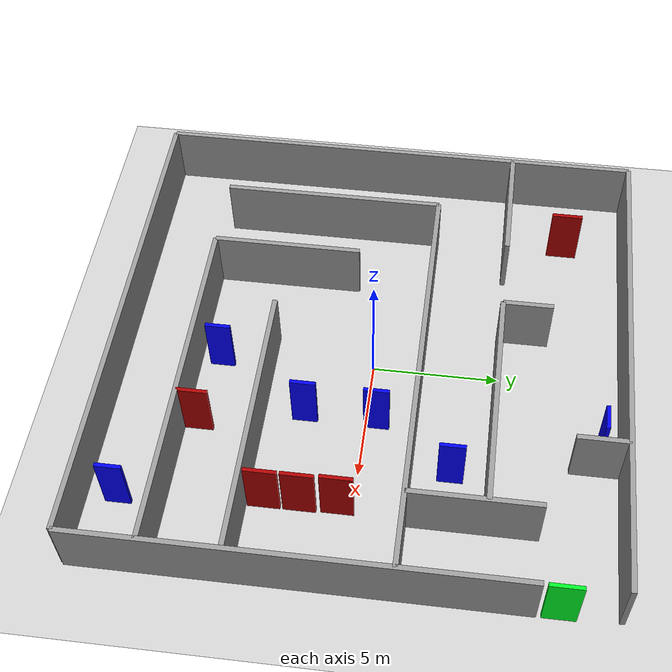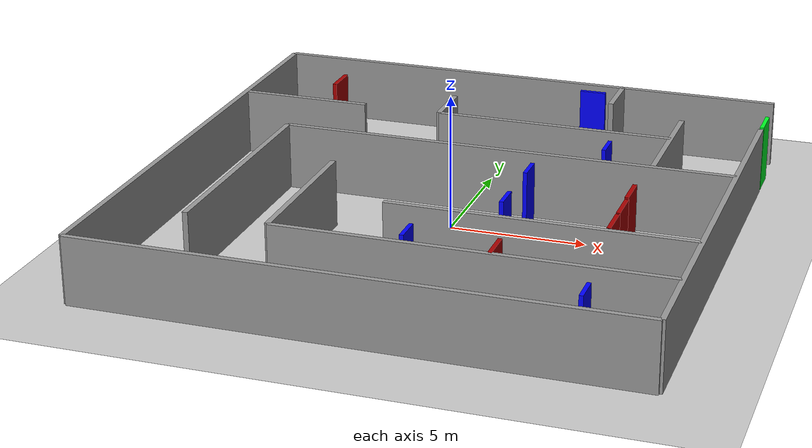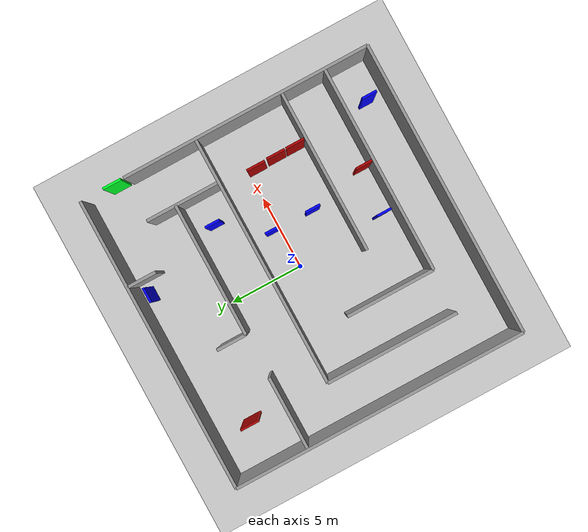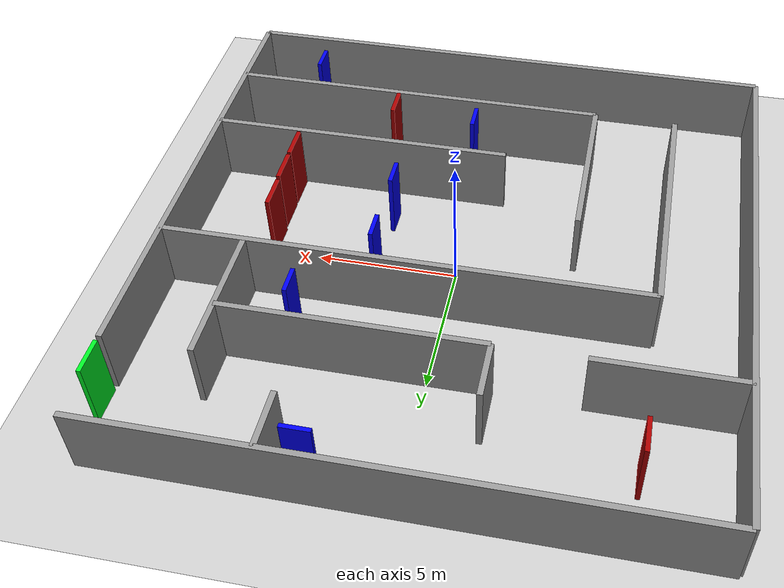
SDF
<sdf version="1.6">
 <world name="default">
  <light name="sun" type="directional">
   <pose>0 0 10 0 -0 0</pose>
   <diffuse>0.8 0.8 0.8 1</diffuse>
   <specular>0.1 0.1 0.1 1</specular>
   <attenuation>
    <range>1000</range>
    <constant>0.9</constant>
    <linear>0.01</linear>
    <quadratic>0.001</quadratic>
   </attenuation>
   <direction>-0.5 0.5 -1</direction>
  </light>
  <model name="ground_plane">
   <static>1</static>
   <link name="link">
    <collision name="collision">
     <geometry><plane><normal>0 0 1</normal><size>100 100</size></plane></geometry>
     <surface><friction><ode><mu>100</mu><mu2>50</mu2></ode></friction></surface>
    </collision>
    <visual name="visual">
     <cast_shadows>0</cast_shadows>
     <geometry><plane><normal>0 0 1</normal><size>100 100</size></plane></geometry>
     <material>
      <script><uri>file://media/materials/scripts/gazebo.material</uri><name>Gazebo/Grey</name></script>
     </material>
    </visual>
   </link>
  </model>
  <gravity>0 0 -9.8</gravity>
  <magnetic_field>6e-06 2.3e-05 -4.2e-05</magnetic_field>
  <atmosphere type="adiabatic"/>
  <physics name="default_physics" default="0" type="ode">
   <max_step_size>0.001</max_step_size>
   <real_time_factor>1</real_time_factor>
   <real_time_update_rate>1000</real_time_update_rate>
  </physics>
  <scene><ambient>0.4 0.4 0.4 1</ambient><background>0.7 0.7 0.7 1</background><shadows>1</shadows></scene>
  <spherical_coordinates>
   <surface_model>EARTH_WGS84</surface_model>
   <latitude_deg>0</latitude_deg>
   <longitude_deg>0</longitude_deg>
   <elevation>0</elevation>
   <heading_deg>0</heading_deg>
  </spherical_coordinates>
  <model name="challenge_maze">
   <static>1</static>
   <link name="Wall_0">
    <pose>-10 -10 0 0 -0 1.5708</pose>
    <collision name="Wall_0_Collision">
     <pose>10 0 1.25 0 -0 0</pose>
     <geometry><box><size>20 0.2 2.5</size></box></geometry>
    </collision>
    <visual name="Wall_0_Visual">
     <pose>10 0 1.25 0 -0 0</pose>
     <geometry><box><size>20 0.2 2.5</size></box></geometry>
     <material>
      <script><uri>file://media/materials/scripts/gazebo.material</uri><name>Gazebo/Grey</name></script>
     </material>
    </visual>
   </link>
   <link name="Wall_1">
    <pose>-10 -10 0 0 -0 0</pose>
    <collision name="Wall_1_Collision">
     <pose>10 0 1.25 0 -0 0</pose>
     <geometry><box><size>20 0.2 2.5</size></box></geometry>
    </collision>
    <visual name="Wall_1_Visual">
     <pose>10 0 1.25 0 -0 0</pose>
     <geometry><box><size>20 0.2 2.5</size></box></geometry>
     <material>
      <script><uri>file://media/materials/scripts/gazebo.material</uri><name>Gazebo/Grey</name></script>
     </material>
    </visual>
   </link>
   <link name="Wall_2">
    <pose>10 -10 0 0 -0 1.5708</pose>
    <collision name="Wall_2_Collision">
     <pose>8.5 0 1.25 0 -0 0</pose>
     <geometry><box><size>17 0.2 2.5</size></box></geometry>
    </collision>
    <visual name="Wall_2_Visual">
     <pose>8.5 0 1.25 0 -0 0</pose>
     <geometry><box><size>17 0.2 2.5</size></box></geometry>
     <material>
      <script><uri>file://media/materials/scripts/gazebo.material</uri><name>Gazebo/Grey</name></script>
     </material>
    </visual>
   </link>
   <link name="Wall_3">
    <pose>-10 10 0 0 -0 0</pose>
    <collision name="Wall_3_Collision">
     <pose>10 0 1.25 0 -0 0</pose>
     <geometry><box><size>20 0.2 2.5</size></box></geometry>
    </collision>
    <visual name="Wall_3_Visual">
     <pose>10 0 1.25 0 -0 0</pose>
     <geometry><box><size>20 0.2 2.5</size></box></geometry>
     <material>
      <script><uri>file://media/materials/scripts/gazebo.material</uri><name>Gazebo/Grey</name></script>
     </material>
    </visual>
   </link>
   <link name="Wall_4">
    <pose>-4 -7 0 0 -0 0</pose>
    <collision name="Wall_4_Collision">
     <pose>7 0 1.25 0 -0 0</pose>
     <geometry><box><size>14 0.2 2.5</size></box></geometry>
    </collision>
    <visual name="Wall_4_Visual">
     <pose>7 0 1.25 0 -0 0</pose>
     <geometry><box><size>14 0.2 2.5</size></box></geometry>
     <material>
      <script><uri>file://media/materials/scripts/gazebo.material</uri><name>Gazebo/Grey</name></script>
     </material>
    </visual>
   </link>
   <link name="Wall_5">
    <pose>-7 -7 0 0 -0 1.5708</pose>
    <collision name="Wall_5_Collision">
     <pose>4.5 0 1.25 0 -0 0</pose>
     <geometry><box><size>9 0.2 2.5</size></box></geometry>
    </collision>
    <visual name="Wall_5_Visual">
     <pose>4.5 0 1.25 0 -0 0</pose>
     <geometry><box><size>9 0.2 2.5</size></box></geometry>
     <material>
      <script><uri>file://media/materials/scripts/gazebo.material</uri><name>Gazebo/Grey</name></script>
     </material>
    </visual>
   </link>
   <link name="Wall_6">
    <pose>-1 -4 0 0 -0 0</pose>
    <collision name="Wall_6_Collision">
     <pose>5.5 0 1.25 0 -0 0</pose>
     <geometry><box><size>11 0.2 2.5</size></box></geometry>
    </collision>
    <visual name="Wall_6_Visual">
     <pose>5.5 0 1.25 0 -0 0</pose>
     <geometry><box><size>11 0.2 2.5</size></box></geometry>
     <material>
      <script><uri>file://media/materials/scripts/gazebo.material</uri><name>Gazebo/Grey</name></script>
     </material>
    </visual>
   </link>
   <link name="Wall_7">
    <pose>-4 -7 0 0 -0 1.5708</pose>
    <collision name="Wall_7_Collision">
     <pose>3 0 1.25 0 -0 0</pose>
     <geometry><box><size>6 0.2 2.5</size></box></geometry>
    </collision>
    <visual name="Wall_7_Visual">
     <pose>3 0 1.25 0 -0 0</pose>
     <geometry><box><size>6 0.2 2.5</size></box></geometry>
     <material>
      <script><uri>file://media/materials/scripts/gazebo.material</uri><name>Gazebo/Grey</name></script>
     </material>
    </visual>
   </link>
   <link name="Wall_8">
    <pose>-7 2 0 0 -0 0</pose>
    <collision name="Wall_8_Collision">
     <pose>8.5 0 1.25 0 -0 0</pose>
     <geometry><box><size>17 0.2 2.5</size></box></geometry>
    </collision>
    <visual name="Wall_8_Visual">
     <pose>8.5 0 1.25 0 -0 0</pose>
     <geometry><box><size>17 0.2 2.5</size></box></geometry>
     <material>
      <script><uri>file://media/materials/scripts/gazebo.material</uri><name>Gazebo/Grey</name></script>
     </material>
    </visual>
   </link>
   <link name="Wall_9">
    <pose>-2 5 0 0 -0 0</pose>
    <collision name="Wall_9_Collision">
     <pose>4.5 0 1.25 0 -0 0</pose>
     <geometry><box><size>9 0.2 2.5</size></box></geometry>
    </collision>
    <visual name="Wall_9_Visual">
     <pose>4.5 0 1.25 0 -0 0</pose>
     <geometry><box><size>9 0.2 2.5</size></box></geometry>
     <material>
      <script><uri>file://media/materials/scripts/gazebo.material</uri><name>Gazebo/Grey</name></script>
     </material>
    </visual>
   </link>
   <link name="Wall_10">
    <pose>-2 5 0 0 -0 1.5708</pose>
    <collision name="Wall_10_Collision">
     <pose>1 0 1.25 0 -0 0</pose>
     <geometry><box><size>2 0.2 2.5</size></box></geometry>
    </collision>
    <visual name="Wall_10_Visual">
     <pose>1 0 1.25 0 -0 0</pose>
     <geometry><box><size>2 0.2 2.5</size></box></geometry>
     <material>
      <script><uri>file://media/materials/scripts/gazebo.material</uri><name>Gazebo/Grey</name></script>
     </material>
    </visual>
   </link>
   <link name="Wall_11">
    <pose>4 8 0 0 -0 1.5708</pose>
    <collision name="Wall_11_Collision">
     <pose>1 0 1.25 0 -0 0</pose>
     <geometry><box><size>2 0.2 2.5</size></box></geometry>
    </collision>
    <visual name="Wall_11_Visual">
     <pose>1 0 1.25 0 -0 0</pose>
     <geometry><box><size>2 0.2 2.5</size></box></geometry>
     <material>
      <script><uri>file://media/materials/scripts/gazebo.material</uri><name>Gazebo/Grey</name></script>
     </material>
    </visual>
   </link>
   <link name="Wall_12">
    <pose>7 2 0 0 -0 1.5708</pose>
    <collision name="Wall_12_Collision">
     <pose>2.5 0 1.25 0 -0 0</pose>
     <geometry><box><size>5 0.2 2.5</size></box></geometry>
    </collision>
    <visual name="Wall_12_Visual">
     <pose>2.5 0 1.25 0 -0 0</pose>
     <geometry><box><size>5 0.2 2.5</size></box></geometry>
     <material>
      <script><uri>file://media/materials/scripts/gazebo.material</uri><name>Gazebo/Grey</name></script>
     </material>
    </visual>
   </link>
   <link name="Wall_13">
    <pose>-10 5 0 0 -0 0</pose>
    <collision name="Wall_13_Collision">
     <pose>2.5 0 1.25 0 -0 0</pose>
     <geometry><box><size>5 0.2 2.5</size></box></geometry>
    </collision>
    <visual name="Wall_13_Visual">
     <pose>2.5 0 1.25 0 -0 0</pose>
     <geometry><box><size>5 0.2 2.5</size></box></geometry>
     <material>
      <script><uri>file://media/materials/scripts/gazebo.material</uri><name>Gazebo/Grey</name></script>
     </material>
    </visual>
   </link>
   <pose>-0.0906 -0.0761 0 0 -0 0</pose>
  </model>
  <model name="wall_red">
   <pose>6.74921 -3.30821 0 0 -0 1.57</pose>
   <link name="Wall_0">
    <collision name="Wall_0_Collision">
     <geometry><box><size>1.25 0.15 2.5</size></box></geometry>
     <pose>0 0 1.25 0 -0 0</pose>
    </collision>
    <visual name="Wall_0_Visual">
     <pose>0 0 1.25 0 -0 0</pose>
     <geometry><box><size>1.25 0.15 2.5</size></box></geometry>
     <material>
      <script><uri>file://media/materials/scripts/gazebo.material</uri><name>Gazebo/Grey</name></script>
      <ambient>0.666667 0 0 1</ambient>
     </material>
    </visual>
   </link>
   <static>1</static>
  </model>
  <model name="wall_red_clone">
   <pose>6.74344 -1.96294 0 0 -0 1.57</pose>
   <link name="Wall_0">
    <collision name="Wall_0_Collision">
     <geometry><box><size>1.25 0.15 2.5</size></box></geometry>
     <pose>0 0 1.25 0 -0 0</pose>
    </collision>
    <visual name="Wall_0_Visual">
     <pose>0 0 1.25 0 -0 0</pose>
     <geometry><box><size>1.25 0.15 2.5</size></box></geometry>
     <material>
      <script><uri>file://media/materials/scripts/gazebo.material</uri><name>Gazebo/Grey</name></script>
      <ambient>0.666667 0 0 1</ambient>
     </material>
    </visual>
   </link>
   <static>1</static>
  </model>
  <model name="wall_red_clone_0">
   <pose>6.69897 -0.549509 0 0 -0 1.57</pose>
   <link name="Wall_0">
    <collision name="Wall_0_Collision">
     <geometry><box><size>1.25 0.15 2.5</size></box></geometry>
     <pose>0 0 1.25 0 -0 0</pose>
    </collision>
    <visual name="Wall_0_Visual">
     <pose>0 0 1.25 0 -0 0</pose>
     <geometry><box><size>1.25 0.15 2.5</size></box></geometry>
     <material>
      <script><uri>file://media/materials/scripts/gazebo.material</uri><name>Gazebo/Grey</name></script>
      <ambient>0.666667 0 0 1</ambient>
     </material>
    </visual>
   </link>
   <static>1</static>
  </model>
  <model name="wall_green">
   <pose>9.9241 7.7172 0 0 -0 1.57</pose>
   <link name="Wall_0">
    <collision name="Wall_0_Collision">
     <geometry><box><size>1.25 0.15 2.5</size></box></geometry>
     <pose>0 0 1.25 0 -0 0</pose>
    </collision>
    <visual name="Wall_0_Visual">
     <pose>0 0 1.25 0 -0 0</pose>
     <geometry><box><size>1.25 0.15 2.5</size></box></geometry>
     <material>
      <script><uri>file://media/materials/scripts/gazebo.material</uri><name>Gazebo/Grey</name></script>
      <ambient>0 1 0.14902 1</ambient>
     </material>
    </visual>
   </link>
   <static>1</static>
  </model>
  <model name="wall_blue">
   <pose>2.92009 9.08086 0 0 -0 0</pose>
   <link name="Wall_0">
    <collision name="Wall_0_Collision">
     <geometry><box><size>1 0.15 2.5</size></box></geometry>
     <pose>0 0 1.25 0 -0 0</pose>
    </collision>
    <visual name="Wall_0_Visual">
     <pose>0 0 1.25 0 -0 0</pose>
     <geometry><box><size>1 0.15 2.5</size></box></geometry>
     <material>
      <script><uri>file://media/materials/scripts/gazebo.material</uri><name>Gazebo/Grey</name></script>
      <ambient>0 0 1 1</ambient>
     </material>
    </visual>
   </link>
   <static>1</static>
  </model>
  <model name="wall_blue_0">
   <pose>4.85655 3.48091 0 0 -0 1.57</pose>
   <link name="Wall_0">
    <collision name="Wall_0_Collision">
     <geometry><box><size>1 0.15 2.5</size></box></geometry>
     <pose>0 0 1.25 0 -0 0</pose>
    </collision>
    <visual name="Wall_0_Visual">
     <pose>0 0 1.25 0 -0 0</pose>
     <geometry><box><size>1 0.15 2.5</size></box></geometry>
     <material>
      <script><uri>file://media/materials/scripts/gazebo.material</uri><name>Gazebo/Grey</name></script>
      <ambient>0 0 1 1</ambient>
     </material>
    </visual>
   </link>
   <static>1</static>
  </model>
  <model name="wall_red_clone_0_clone">
   <pose>-7.08181 7.36178 0 0 -0 1.57</pose>
   <link name="Wall_0">
    <collision name="Wall_0_Collision">
     <geometry><box><size>1.25 0.15 2.5</size></box></geometry>
     <pose>0 0 1.25 0 -0 0</pose>
    </collision>
    <visual name="Wall_0_Visual">
     <pose>0 0 1.25 0 -0 0</pose>
     <geometry><box><size>1.25 0.15 2.5</size></box></geometry>
     <material>
      <script><uri>file://media/materials/scripts/gazebo.material</uri><name>Gazebo/Grey</name></script>
      <ambient>0.666667 0 0 1</ambient>
     </material>
    </visual>
   </link>
   <static>1</static>
  </model>
  <model name="wall_blue_0_clone">
   <pose>2.73836 -2.37387 0 0 -0 1.57</pose>
   <link name="Wall_0">
    <collision name="Wall_0_Collision">
     <geometry><box><size>1 0.15 2.5</size></box></geometry>
     <pose>0 0 1.25 0 -0 0</pose>
    </collision>
    <visual name="Wall_0_Visual">
     <pose>0 0 1.25 0 -0 0</pose>
     <geometry><box><size>1 0.15 2.5</size></box></geometry>
     <material>
      <script><uri>file://media/materials/scripts/gazebo.material</uri><name>Gazebo/Grey</name></script>
      <ambient>0 0 1 1</ambient>
     </material>
    </visual>
   </link>
   <static>1</static>
  </model>
  <model name="wall_red_clone_0_clone_0">
   <pose>3.60135 -6.48254 0 0 -0 1.57</pose>
   <link name="Wall_0">
    <collision name="Wall_0_Collision">
     <geometry><box><size>1.25 0.15 2.5</size></box></geometry>
     <pose>0 0 1.25 0 -0 0</pose>
    </collision>
    <visual name="Wall_0_Visual">
     <pose>0 0 1.25 0 -0 0</pose>
     <geometry><box><size>1.25 0.15 2.5</size></box></geometry>
     <material>
      <script><uri>file://media/materials/scripts/gazebo.material</uri><name>Gazebo/Grey</name></script>
      <ambient>0.666667 0 0 1</ambient>
     </material>
    </visual>
   </link>
   <static>1</static>
  </model>
  <model name="wall_blue_0_clone_clone">
   <pose>0.447237 -6.096 0 0 -0 1.57</pose>
   <link name="Wall_0">
    <collision name="Wall_0_Collision">
     <geometry><box><size>1 0.15 2.5</size></box></geometry>
     <pose>0 0 1.25 0 -0 0</pose>
    </collision>
    <visual name="Wall_0_Visual">
     <pose>0 0 1.25 0 -0 0</pose>
     <geometry><box><size>1 0.15 2.5</size></box></geometry>
     <material>
      <script><uri>file://media/materials/scripts/gazebo.material</uri><name>Gazebo/Grey</name></script>
      <ambient>0 0 1 1</ambient>
     </material>
    </visual>
   </link>
   <static>1</static>
  </model>
  <model name="wall_blue_0_clone_clone_clone">
   <pose>7.19507 -8.73934 0 0 -0 1.57</pose>
   <link name="Wall_0">
    <collision name="Wall_0_Collision">
     <geometry><box><size>1 0.15 2.5</size></box></geometry>
     <pose>0 0 1.25 0 -0 0</pose>
    </collision>
    <visual name="Wall_0_Visual">
     <pose>0 0 1.25 0 -0 0</pose>
     <geometry><box><size>1 0.15 2.5</size></box></geometry>
     <material>
      <script><uri>file://media/materials/scripts/gazebo.material</uri><name>Gazebo/Grey</name></script>
      <ambient>0 0 1 1</ambient>
     </material>
    </visual>
   </link>
   <static>1</static>
  </model>
  <model name="wall_blue_0_clone_clone_clone_0">
   <pose>2.76259 0.439999 0 0 -0 1.57</pose>
   <link name="Wall_0">
    <collision name="Wall_0_Collision">
     <geometry><box><size>1 0.15 2.5</size></box></geometry>
     <pose>0 0 1.25 0 -0 0</pose>
    </collision>
    <visual name="Wall_0_Visual">
     <pose>0 0 1.25 0 -0 0</pose>
     <geometry><box><size>1 0.15 2.5</size></box></geometry>
     <material>
      <script><uri>file://media/materials/scripts/gazebo.material</uri><name>Gazebo/Grey</name></script>
      <ambient>0 0 1 1</ambient>
     </material>
    </visual>
   </link>
   <static>1</static>
  </model>
  <audio><device>default</device></audio>
 </world>
</sdf>
